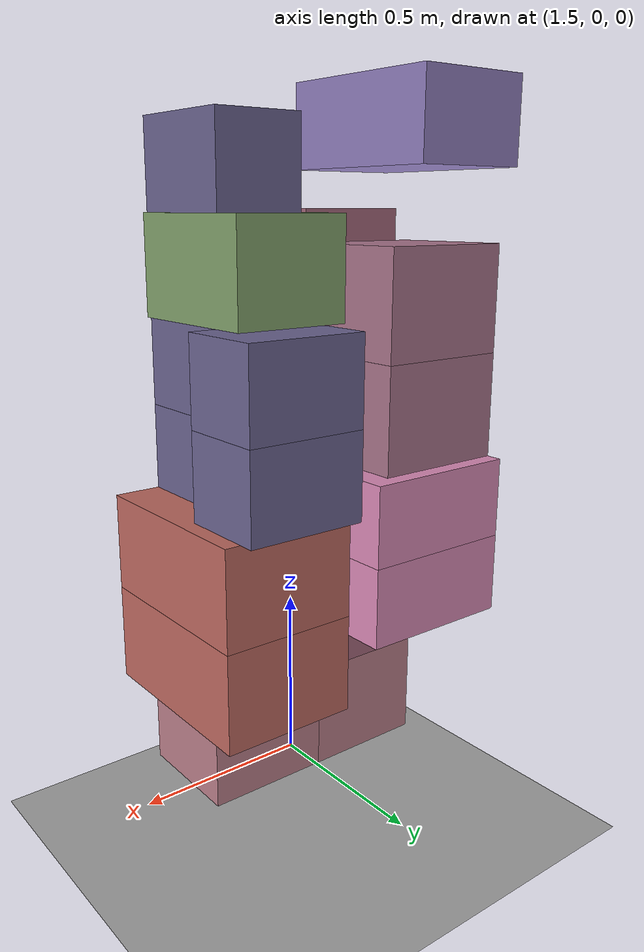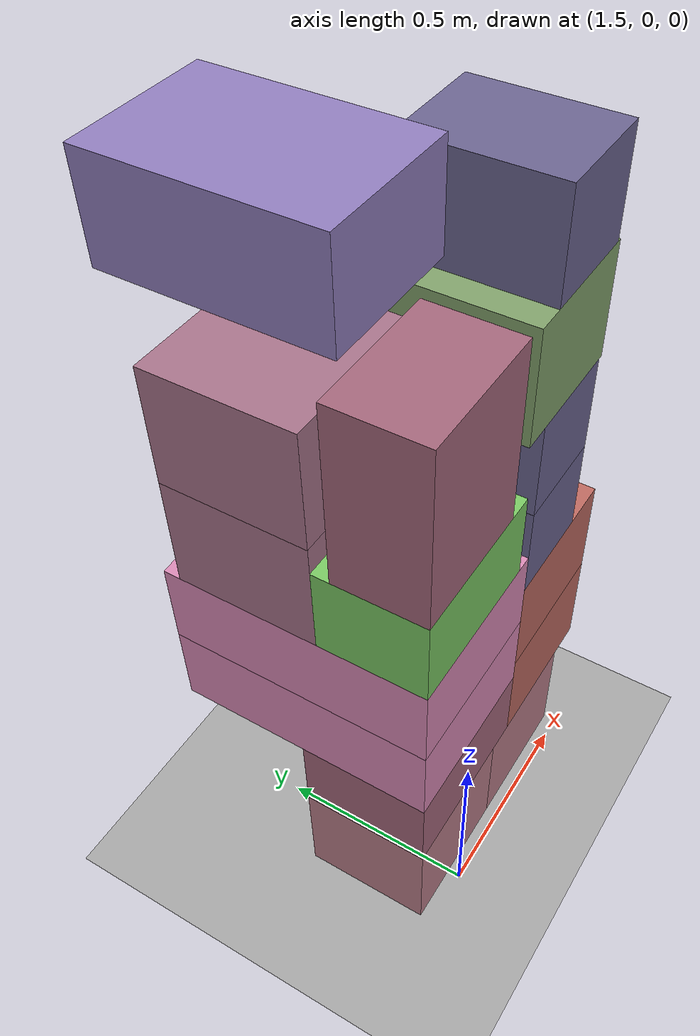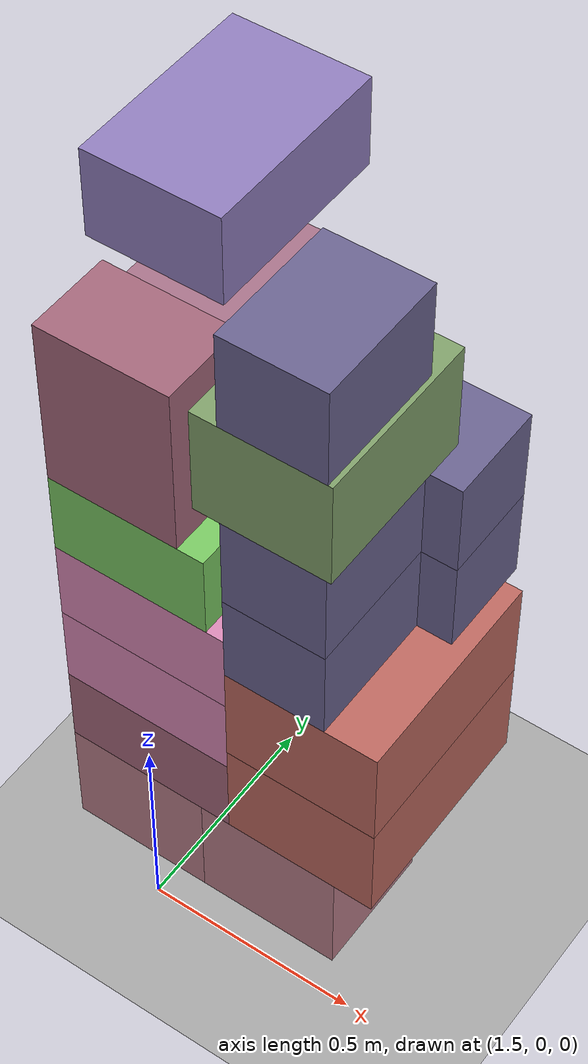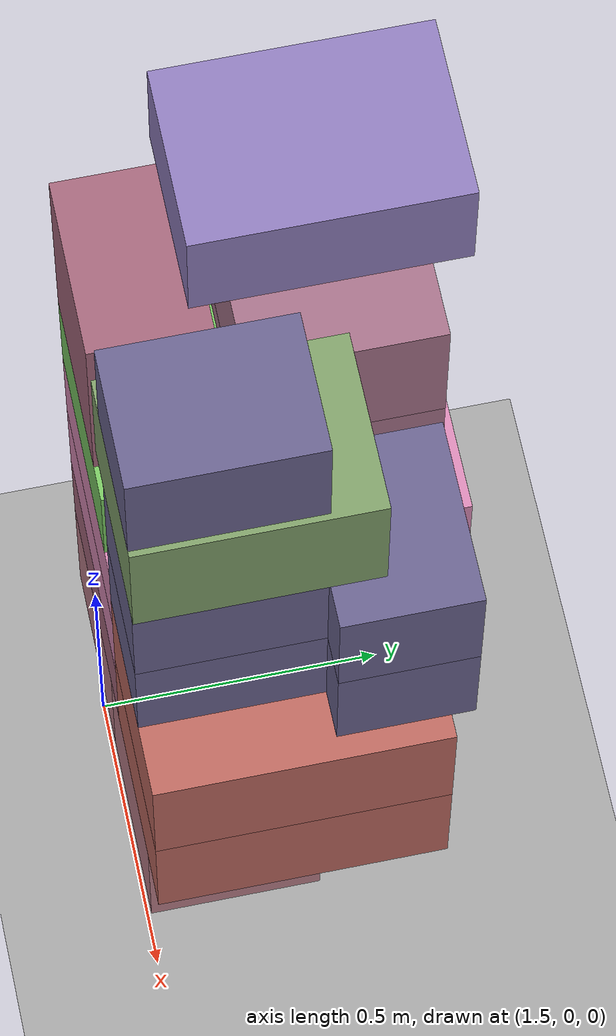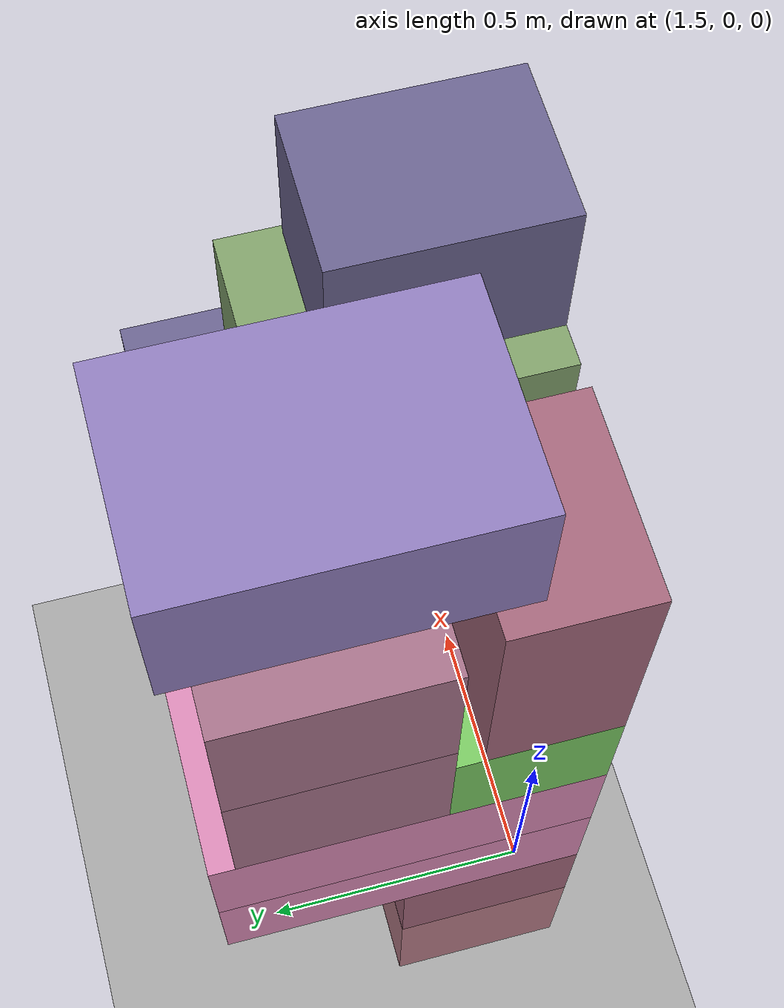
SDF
<sdf version="1.10">
 <world name="pallet_towers">
  <model name="ground_plane">
   <static>true</static>
   <link name="link">
    <collision name="collision">
     <geometry><plane><normal>0 0 1</normal><size>30 30</size></plane></geometry>
     <surface>
      <friction><ode><mu>0.55</mu><mu2>0.55</mu2></ode></friction>
      <bounce><restitution_coefficient>0</restitution_coefficient><threshold>100000</threshold></bounce>
      <contact><ode><kp>1000000</kp><kd>100</kd><max_vel>1</max_vel><min_depth>0.0005</min_depth></ode></contact>
     </surface>
    </collision>
    <visual name="visual">
     <geometry><plane><normal>0 0 1</normal><size>30 30</size></plane></geometry>
     <material><ambient>0.65 0.65 0.65 1</ambient><diffuse>0.65 0.65 0.65 1</diffuse></material>
    </visual>
   </link>
  </model>
  <model name="box_p02_0001_EGGS_001_EGGS">
   <static>false</static>
   <pose>1.465 0.15 0.284 0 0 0</pose>
   <link name="body">
    <inertial>
     <mass>18</mass>
     <inertia><ixx>0.2526</ixx><ixy>0</ixy><ixz>0</ixz><iyy>0.28095</iyy><iyz>0</iyz><izz>0.29835</izz></inertia>
    </inertial>
    <collision name="collision">
     <geometry><box><size>0.33 0.3 0.28</size></box></geometry>
     <surface>
      <friction><ode><mu>0.55</mu><mu2>0.55</mu2></ode></friction>
      <bounce><restitution_coefficient>0</restitution_coefficient><threshold>100000</threshold></bounce>
      <contact><ode><kp>1000000</kp><kd>100</kd><max_vel>1</max_vel><min_depth>0.0005</min_depth></ode></contact>
     </surface>
    </collision>
    <visual name="visual">
     <geometry><box><size>0.33 0.3 0.28</size></box></geometry>
     <material>
      <ambient>0.725490196 0.494117647 0.537254902 1</ambient>
      <diffuse>0.725490196 0.494117647 0.537254902 1</diffuse>
      <specular>0.05 0.05 0.05 1</specular>
     </material>
    </visual>
   </link>
  </model>
  <model name="box_p02_0002_EGGS_002_EGGS">
   <static>false</static>
   <pose>1.795 0.15 0.284 0 0 0</pose>
   <link name="body">
    <inertial>
     <mass>18</mass>
     <inertia><ixx>0.2526</ixx><ixy>0</ixy><ixz>0</ixz><iyy>0.28095</iyy><iyz>0</iyz><izz>0.29835</izz></inertia>
    </inertial>
    <collision name="collision">
     <geometry><box><size>0.33 0.3 0.28</size></box></geometry>
     <surface>
      <friction><ode><mu>0.55</mu><mu2>0.55</mu2></ode></friction>
      <bounce><restitution_coefficient>0</restitution_coefficient><threshold>100000</threshold></bounce>
      <contact><ode><kp>1000000</kp><kd>100</kd><max_vel>1</max_vel><min_depth>0.0005</min_depth></ode></contact>
     </surface>
    </collision>
    <visual name="visual">
     <geometry><box><size>0.33 0.3 0.28</size></box></geometry>
     <material>
      <ambient>0.725490196 0.494117647 0.537254902 1</ambient>
      <diffuse>0.725490196 0.494117647 0.537254902 1</diffuse>
      <specular>0.05 0.05 0.05 1</specular>
     </material>
    </visual>
   </link>
  </model>
  <model name="box_p02_0011_ICECRM_002_ICECRM">
   <static>false</static>
   <pose>1.5 0.15 0.524 0 0 0</pose>
   <link name="body">
    <inertial>
     <mass>8</mass>
     <inertia>
      <ixx>0.0866666667</ixx>
      <ixy>0</ixy>
      <ixz>0</ixz>
      <iyy>0.133333333</iyy>
      <iyz>0</iyz>
      <izz>0.166666667</izz>
     </inertia>
    </inertial>
    <collision name="collision">
     <geometry><box><size>0.4 0.3 0.2</size></box></geometry>
     <surface>
      <friction><ode><mu>0.55</mu><mu2>0.55</mu2></ode></friction>
      <bounce><restitution_coefficient>0</restitution_coefficient><threshold>100000</threshold></bounce>
      <contact><ode><kp>1000000</kp><kd>100</kd><max_vel>1</max_vel><min_depth>0.0005</min_depth></ode></contact>
     </surface>
    </collision>
    <visual name="visual">
     <geometry><box><size>0.4 0.3 0.2</size></box></geometry>
     <material>
      <ambient>0.643137255 0.403921569 0.482352941 1</ambient>
      <diffuse>0.643137255 0.403921569 0.482352941 1</diffuse>
      <specular>0.05 0.05 0.05 1</specular>
     </material>
    </visual>
   </link>
  </model>
  <model name="box_p02_0013_ONION_001_ONION">
   <static>false</static>
   <pose>1.875 0.25 0.549 0 0 0</pose>
   <link name="body">
    <inertial>
     <mass>10</mass>
     <inertia>
      <ixx>0.260416667</ixx>
      <ixy>0</ixy>
      <ixz>0</ixz>
      <iyy>0.154166667</iyy>
      <iyz>0</iyz>
      <izz>0.310416667</izz>
     </inertia>
    </inertial>
    <collision name="collision">
     <geometry><box><size>0.35 0.5 0.25</size></box></geometry>
     <surface>
      <friction><ode><mu>0.55</mu><mu2>0.55</mu2></ode></friction>
      <bounce><restitution_coefficient>0</restitution_coefficient><threshold>100000</threshold></bounce>
      <contact><ode><kp>1000000</kp><kd>100</kd><max_vel>1</max_vel><min_depth>0.0005</min_depth></ode></contact>
     </surface>
    </collision>
    <visual name="visual">
     <geometry><box><size>0.35 0.5 0.25</size></box></geometry>
     <material>
      <ambient>0.741176471 0.411764706 0.376470588 1</ambient>
      <diffuse>0.741176471 0.411764706 0.376470588 1</diffuse>
      <specular>0.05 0.05 0.05 1</specular>
     </material>
    </visual>
   </link>
  </model>
  <model name="box_p02_0014_ONION_002_ONION">
   <static>false</static>
   <pose>1.875 0.25 0.799 0 0 0</pose>
   <link name="body">
    <inertial>
     <mass>10</mass>
     <inertia>
      <ixx>0.260416667</ixx>
      <ixy>0</ixy>
      <ixz>0</ixz>
      <iyy>0.154166667</iyy>
      <iyz>0</iyz>
      <izz>0.310416667</izz>
     </inertia>
    </inertial>
    <collision name="collision">
     <geometry><box><size>0.35 0.5 0.25</size></box></geometry>
     <surface>
      <friction><ode><mu>0.55</mu><mu2>0.55</mu2></ode></friction>
      <bounce><restitution_coefficient>0</restitution_coefficient><threshold>100000</threshold></bounce>
      <contact><ode><kp>1000000</kp><kd>100</kd><max_vel>1</max_vel><min_depth>0.0005</min_depth></ode></contact>
     </surface>
    </collision>
    <visual name="visual">
     <geometry><box><size>0.35 0.5 0.25</size></box></geometry>
     <material>
      <ambient>0.741176471 0.411764706 0.376470588 1</ambient>
      <diffuse>0.741176471 0.411764706 0.376470588 1</diffuse>
      <specular>0.05 0.05 0.05 1</specular>
     </material>
    </visual>
   </link>
  </model>
  <model name="box_p02_0015_POTATO_001_POTATO">
   <static>false</static>
   <pose>1.5 0.3 0.724 0 0 0</pose>
   <link name="body">
    <inertial>
     <mass>25</mass>
     <inertia>
      <ixx>0.833333333</ixx>
      <ixy>0</ixy>
      <ixz>0</ixz>
      <iyy>0.416666667</iyy>
      <iyz>0</iyz>
      <izz>1.08333333</izz>
     </inertia>
    </inertial>
    <collision name="collision">
     <geometry><box><size>0.4 0.6 0.2</size></box></geometry>
     <surface>
      <friction><ode><mu>0.55</mu><mu2>0.55</mu2></ode></friction>
      <bounce><restitution_coefficient>0</restitution_coefficient><threshold>100000</threshold></bounce>
      <contact><ode><kp>1000000</kp><kd>100</kd><max_vel>1</max_vel><min_depth>0.0005</min_depth></ode></contact>
     </surface>
    </collision>
    <visual name="visual">
     <geometry><box><size>0.4 0.6 0.2</size></box></geometry>
     <material>
      <ambient>0.854901961 0.541176471 0.71372549 1</ambient>
      <diffuse>0.854901961 0.541176471 0.71372549 1</diffuse>
      <specular>0.05 0.05 0.05 1</specular>
     </material>
    </visual>
   </link>
  </model>
  <model name="box_p02_0016_POTATO_002_POTATO">
   <static>false</static>
   <pose>1.5 0.3 0.924 0 0 0</pose>
   <link name="body">
    <inertial>
     <mass>25</mass>
     <inertia>
      <ixx>0.833333333</ixx>
      <ixy>0</ixy>
      <ixz>0</ixz>
      <iyy>0.416666667</iyy>
      <iyz>0</iyz>
      <izz>1.08333333</izz>
     </inertia>
    </inertial>
    <collision name="collision">
     <geometry><box><size>0.4 0.6 0.2</size></box></geometry>
     <surface>
      <friction><ode><mu>0.55</mu><mu2>0.55</mu2></ode></friction>
      <bounce><restitution_coefficient>0</restitution_coefficient><threshold>100000</threshold></bounce>
      <contact><ode><kp>1000000</kp><kd>100</kd><max_vel>1</max_vel><min_depth>0.0005</min_depth></ode></contact>
     </surface>
    </collision>
    <visual name="visual">
     <geometry><box><size>0.4 0.6 0.2</size></box></geometry>
     <material>
      <ambient>0.854901961 0.541176471 0.71372549 1</ambient>
      <diffuse>0.854901961 0.541176471 0.71372549 1</diffuse>
      <specular>0.05 0.05 0.05 1</specular>
     </material>
    </visual>
   </link>
  </model>
  <model name="box_p02_0022_SUGAR_001_SUGAR">
   <static>false</static>
   <pose>1.815 0.155 1.034 0 0 0</pose>
   <link name="body">
    <inertial>
     <mass>10</mass>
     <inertia>
      <ixx>0.120416667</ixx>
      <ixy>0</ixy>
      <ixz>0</ixz>
      <iyy>0.0844166667</iyy>
      <iyz>0</iyz>
      <izz>0.124166667</izz>
     </inertia>
    </inertial>
    <collision name="collision">
     <geometry><box><size>0.23 0.31 0.22</size></box></geometry>
     <surface>
      <friction><ode><mu>0.55</mu><mu2>0.55</mu2></ode></friction>
      <bounce><restitution_coefficient>0</restitution_coefficient><threshold>100000</threshold></bounce>
      <contact><ode><kp>1000000</kp><kd>100</kd><max_vel>1</max_vel><min_depth>0.0005</min_depth></ode></contact>
     </surface>
    </collision>
    <visual name="visual">
     <geometry><box><size>0.23 0.31 0.22</size></box></geometry>
     <material>
      <ambient>0.419607843 0.392156863 0.564705882 1</ambient>
      <diffuse>0.419607843 0.392156863 0.564705882 1</diffuse>
      <specular>0.05 0.05 0.05 1</specular>
     </material>
    </visual>
   </link>
  </model>
  <model name="box_p02_0023_SUGAR_002_SUGAR">
   <static>false</static>
   <pose>1.855 0.425 1.034 0 0 0</pose>
   <link name="body">
    <inertial>
     <mass>10</mass>
     <inertia>
      <ixx>0.0844166667</ixx>
      <ixy>0</ixy>
      <ixz>0</ixz>
      <iyy>0.120416667</iyy>
      <iyz>0</iyz>
      <izz>0.124166667</izz>
     </inertia>
    </inertial>
    <collision name="collision">
     <geometry><box><size>0.31 0.23 0.22</size></box></geometry>
     <surface>
      <friction><ode><mu>0.55</mu><mu2>0.55</mu2></ode></friction>
      <bounce><restitution_coefficient>0</restitution_coefficient><threshold>100000</threshold></bounce>
      <contact><ode><kp>1000000</kp><kd>100</kd><max_vel>1</max_vel><min_depth>0.0005</min_depth></ode></contact>
     </surface>
    </collision>
    <visual name="visual">
     <geometry><box><size>0.31 0.23 0.22</size></box></geometry>
     <material>
      <ambient>0.419607843 0.392156863 0.564705882 1</ambient>
      <diffuse>0.419607843 0.392156863 0.564705882 1</diffuse>
      <specular>0.05 0.05 0.05 1</specular>
     </material>
    </visual>
   </link>
  </model>
  <model name="box_p02_0025_SUGAR_004_SUGAR">
   <static>false</static>
   <pose>1.815 0.155 1.254 0 0 0</pose>
   <link name="body">
    <inertial>
     <mass>10</mass>
     <inertia>
      <ixx>0.120416667</ixx>
      <ixy>0</ixy>
      <ixz>0</ixz>
      <iyy>0.0844166667</iyy>
      <iyz>0</iyz>
      <izz>0.124166667</izz>
     </inertia>
    </inertial>
    <collision name="collision">
     <geometry><box><size>0.23 0.31 0.22</size></box></geometry>
     <surface>
      <friction><ode><mu>0.55</mu><mu2>0.55</mu2></ode></friction>
      <bounce><restitution_coefficient>0</restitution_coefficient><threshold>100000</threshold></bounce>
      <contact><ode><kp>1000000</kp><kd>100</kd><max_vel>1</max_vel><min_depth>0.0005</min_depth></ode></contact>
     </surface>
    </collision>
    <visual name="visual">
     <geometry><box><size>0.23 0.31 0.22</size></box></geometry>
     <material>
      <ambient>0.419607843 0.392156863 0.564705882 1</ambient>
      <diffuse>0.419607843 0.392156863 0.564705882 1</diffuse>
      <specular>0.05 0.05 0.05 1</specular>
     </material>
    </visual>
   </link>
  </model>
  <model name="box_p02_0027_TEA_002_TEA">
   <static>false</static>
   <pose>1.48 0.12 1.124 0 0 0</pose>
   <link name="body">
    <inertial>
     <mass>5</mass>
     <inertia>
      <ixx>0.0406666667</ixx>
      <ixy>0</ixy>
      <ixz>0</ixz>
      <iyy>0.0706666667</iyy>
      <iyz>0</iyz>
      <izz>0.078</izz>
     </inertia>
    </inertial>
    <collision name="collision">
     <geometry><box><size>0.36 0.24 0.2</size></box></geometry>
     <surface>
      <friction><ode><mu>0.55</mu><mu2>0.55</mu2></ode></friction>
      <bounce><restitution_coefficient>0</restitution_coefficient><threshold>100000</threshold></bounce>
      <contact><ode><kp>1000000</kp><kd>100</kd><max_vel>1</max_vel><min_depth>0.0005</min_depth></ode></contact>
     </surface>
    </collision>
    <visual name="visual">
     <geometry><box><size>0.36 0.24 0.2</size></box></geometry>
     <material>
      <ambient>0.478431373 0.788235294 0.388235294 1</ambient>
      <diffuse>0.478431373 0.788235294 0.388235294 1</diffuse>
      <specular>0.05 0.05 0.05 1</specular>
     </material>
    </visual>
   </link>
  </model>
  <model name="box_p02_0028_WINE_001_WINE">
   <static>false</static>
   <pose>1.47 0.4 1.154 0 0 0</pose>
   <link name="body">
    <inertial>
     <mass>18</mass>
     <inertia><ixx>0.255</ixx><ixy>0</ixy><ixz>0</ixz><iyy>0.2748</iyy><iyz>0</iyz><izz>0.327</izz></inertia>
    </inertial>
    <collision name="collision">
     <geometry><box><size>0.34 0.32 0.26</size></box></geometry>
     <surface>
      <friction><ode><mu>0.55</mu><mu2>0.55</mu2></ode></friction>
      <bounce><restitution_coefficient>0</restitution_coefficient><threshold>100000</threshold></bounce>
      <contact><ode><kp>1000000</kp><kd>100</kd><max_vel>1</max_vel><min_depth>0.0005</min_depth></ode></contact>
     </surface>
    </collision>
    <visual name="visual">
     <geometry><box><size>0.34 0.32 0.26</size></box></geometry>
     <material>
      <ambient>0.654901961 0.450980392 0.541176471 1</ambient>
      <diffuse>0.654901961 0.450980392 0.541176471 1</diffuse>
      <specular>0.05 0.05 0.05 1</specular>
     </material>
    </visual>
   </link>
  </model>
  <model name="box_p02_0029_WINE_002_WINE">
   <static>false</static>
   <pose>1.47 0.4 1.414 0 0 0</pose>
   <link name="body">
    <inertial>
     <mass>18</mass>
     <inertia><ixx>0.255</ixx><ixy>0</ixy><ixz>0</ixz><iyy>0.2748</iyy><iyz>0</iyz><izz>0.327</izz></inertia>
    </inertial>
    <collision name="collision">
     <geometry><box><size>0.34 0.32 0.26</size></box></geometry>
     <surface>
      <friction><ode><mu>0.55</mu><mu2>0.55</mu2></ode></friction>
      <bounce><restitution_coefficient>0</restitution_coefficient><threshold>100000</threshold></bounce>
      <contact><ode><kp>1000000</kp><kd>100</kd><max_vel>1</max_vel><min_depth>0.0005</min_depth></ode></contact>
     </surface>
    </collision>
    <visual name="visual">
     <geometry><box><size>0.34 0.32 0.26</size></box></geometry>
     <material>
      <ambient>0.654901961 0.450980392 0.541176471 1</ambient>
      <diffuse>0.654901961 0.450980392 0.541176471 1</diffuse>
      <specular>0.05 0.05 0.05 1</specular>
     </material>
    </visual>
   </link>
  </model>
  <model name="box_p02_0036_SUGAR_008_SUGAR">
   <static>false</static>
   <pose>1.855 0.425 1.254 0 0 0</pose>
   <link name="body">
    <inertial>
     <mass>10</mass>
     <inertia>
      <ixx>0.0844166667</ixx>
      <ixy>0</ixy>
      <ixz>0</ixz>
      <iyy>0.120416667</iyy>
      <iyz>0</iyz>
      <izz>0.124166667</izz>
     </inertia>
    </inertial>
    <collision name="collision">
     <geometry><box><size>0.31 0.23 0.22</size></box></geometry>
     <surface>
      <friction><ode><mu>0.55</mu><mu2>0.55</mu2></ode></friction>
      <bounce><restitution_coefficient>0</restitution_coefficient><threshold>100000</threshold></bounce>
      <contact><ode><kp>1000000</kp><kd>100</kd><max_vel>1</max_vel><min_depth>0.0005</min_depth></ode></contact>
     </surface>
    </collision>
    <visual name="visual">
     <geometry><box><size>0.31 0.23 0.22</size></box></geometry>
     <material>
      <ambient>0.419607843 0.392156863 0.564705882 1</ambient>
      <diffuse>0.419607843 0.392156863 0.564705882 1</diffuse>
      <specular>0.05 0.05 0.05 1</specular>
     </material>
    </visual>
   </link>
  </model>
  <model name="box_p02_0037_COFFEE_013_COFFEE">
   <static>false</static>
   <pose>1.79 0.2 1.489 0 0 0</pose>
   <link name="body">
    <inertial>
     <mass>13</mass>
     <inertia>
      <ixx>0.241041667</ixx>
      <ixy>0</ixy>
      <ixz>0</ixz>
      <iyy>0.165208333</iyy>
      <iyz>0</iyz>
      <izz>0.270833333</izz>
     </inertia>
    </inertial>
    <collision name="collision">
     <geometry><box><size>0.3 0.4 0.25</size></box></geometry>
     <surface>
      <friction><ode><mu>0.55</mu><mu2>0.55</mu2></ode></friction>
      <bounce><restitution_coefficient>0</restitution_coefficient><threshold>100000</threshold></bounce>
      <contact><ode><kp>1000000</kp><kd>100</kd><max_vel>1</max_vel><min_depth>0.0005</min_depth></ode></contact>
     </surface>
    </collision>
    <visual name="visual">
     <geometry><box><size>0.3 0.4 0.25</size></box></geometry>
     <material>
      <ambient>0.505882353 0.631372549 0.419607843 1</ambient>
      <diffuse>0.505882353 0.631372549 0.419607843 1</diffuse>
      <specular>0.05 0.05 0.05 1</specular>
     </material>
    </visual>
   </link>
  </model>
  <model name="box_p02_0040_ICECRM_004_ICECRM">
   <static>false</static>
   <pose>1.45 0.1 1.424 0 0 0</pose>
   <link name="body">
    <inertial>
     <mass>8</mass>
     <inertia>
      <ixx>0.133333333</ixx>
      <ixy>0</ixy>
      <ixz>0</ixz>
      <iyy>0.166666667</iyy>
      <iyz>0</iyz>
      <izz>0.0866666667</izz>
     </inertia>
    </inertial>
    <collision name="collision">
     <geometry><box><size>0.3 0.2 0.4</size></box></geometry>
     <surface>
      <friction><ode><mu>0.55</mu><mu2>0.55</mu2></ode></friction>
      <bounce><restitution_coefficient>0</restitution_coefficient><threshold>100000</threshold></bounce>
      <contact><ode><kp>1000000</kp><kd>100</kd><max_vel>1</max_vel><min_depth>0.0005</min_depth></ode></contact>
     </surface>
    </collision>
    <visual name="visual">
     <geometry><box><size>0.3 0.2 0.4</size></box></geometry>
     <material>
      <ambient>0.643137255 0.403921569 0.482352941 1</ambient>
      <diffuse>0.643137255 0.403921569 0.482352941 1</diffuse>
      <specular>0.05 0.05 0.05 1</specular>
     </material>
    </visual>
   </link>
  </model>
  <model name="box_p02_0045_SUGAR_005_SUGAR">
   <static>false</static>
   <pose>1.815 0.155 1.724 0 0 0</pose>
   <link name="body">
    <inertial>
     <mass>10</mass>
     <inertia>
      <ixx>0.120416667</ixx>
      <ixy>0</ixy>
      <ixz>0</ixz>
      <iyy>0.0844166667</iyy>
      <iyz>0</iyz>
      <izz>0.124166667</izz>
     </inertia>
    </inertial>
    <collision name="collision">
     <geometry><box><size>0.23 0.31 0.22</size></box></geometry>
     <surface>
      <friction><ode><mu>0.55</mu><mu2>0.55</mu2></ode></friction>
      <bounce><restitution_coefficient>0</restitution_coefficient><threshold>100000</threshold></bounce>
      <contact><ode><kp>1000000</kp><kd>100</kd><max_vel>1</max_vel><min_depth>0.0005</min_depth></ode></contact>
     </surface>
    </collision>
    <visual name="visual">
     <geometry><box><size>0.23 0.31 0.22</size></box></geometry>
     <material>
      <ambient>0.419607843 0.392156863 0.564705882 1</ambient>
      <diffuse>0.419607843 0.392156863 0.564705882 1</diffuse>
      <specular>0.05 0.05 0.05 1</specular>
     </material>
    </visual>
   </link>
  </model>
  <model name="box_p02_0046_RICE_008_RICE">
   <static>false</static>
   <pose>1.45 0.38 1.814 0 0 0</pose>
   <link name="body">
    <inertial>
     <mass>20</mass>
     <inertia>
      <ixx>0.389333333</ixx>
      <ixy>0</ixy>
      <ixz>0</ixz>
      <iyy>0.216666667</iyy>
      <iyz>0</iyz>
      <izz>0.472666667</izz>
     </inertia>
    </inertial>
    <collision name="collision">
     <geometry><box><size>0.3 0.44 0.2</size></box></geometry>
     <surface>
      <friction><ode><mu>0.55</mu><mu2>0.55</mu2></ode></friction>
      <bounce><restitution_coefficient>0</restitution_coefficient><threshold>100000</threshold></bounce>
      <contact><ode><kp>1000000</kp><kd>100</kd><max_vel>1</max_vel><min_depth>0.0005</min_depth></ode></contact>
     </surface>
    </collision>
    <visual name="visual">
     <geometry><box><size>0.3 0.44 0.2</size></box></geometry>
     <material>
      <ambient>0.564705882 0.494117647 0.741176471 1</ambient>
      <diffuse>0.564705882 0.494117647 0.741176471 1</diffuse>
      <specular>0.05 0.05 0.05 1</specular>
     </material>
    </visual>
   </link>
  </model>
 </world>
</sdf>
